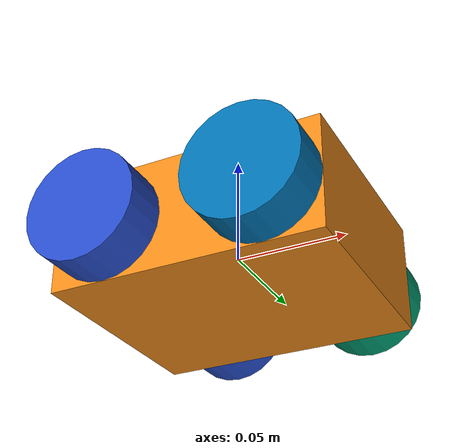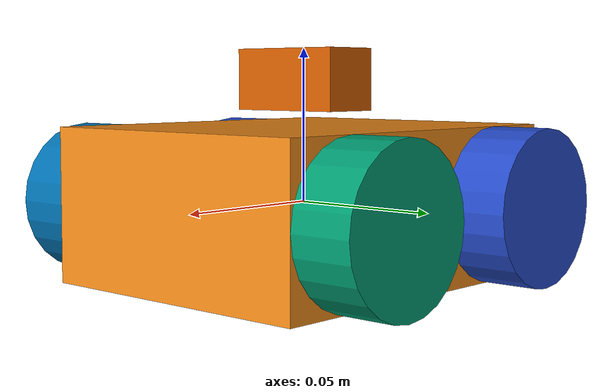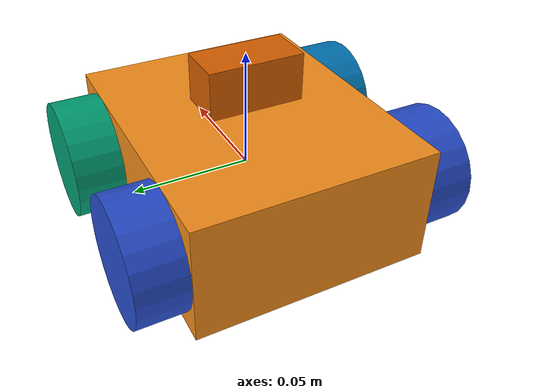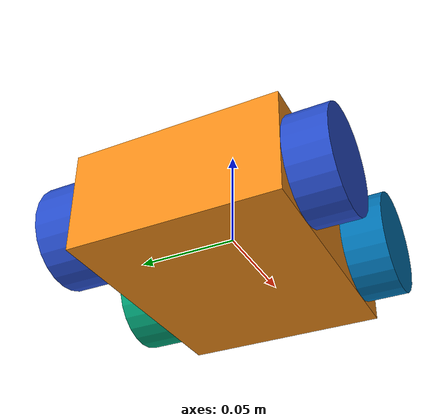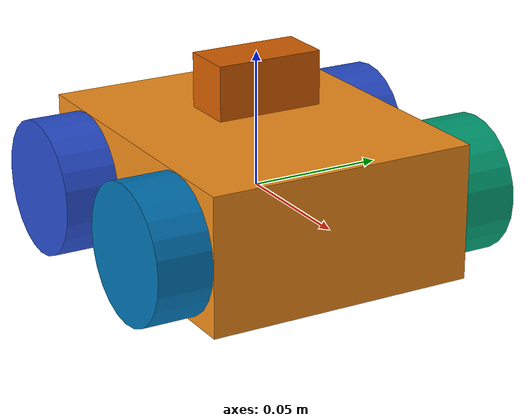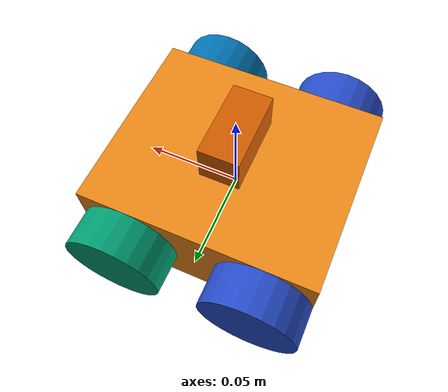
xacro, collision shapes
<?xml version='1.0'?>

<robot name="myrobot" xmlns:xacro="http://www.ros.org/wiki/xacro">

  <xacro:include filename="$(find mybot_description)/urdf/mybot.gazebo" />
  <xacro:include filename="$(find mybot_description)/urdf/materials.xacro" />
  <xacro:include filename="$(find mybot_description)/urdf/macros.xacro" />

  <link name='chassis'>
    <pose>0 0 0.1 0 0 0</pose>

    <inertial>
      <mass value="15.0"/>
      <origin xyz="0 0 0.03" rpy=" 0 0 0"/>
      <inertia
          ixx="0.1" ixy="0" ixz="0"
          iyy="0.1" iyz="0"
          izz="0.1"
      />
    </inertial>

    <collision name='collision'>
      <geometry>
        <box size=".12 .1 .05"/>
      </geometry>
    </collision>

    <visual name='chassis_visual'>
      <origin xyz="0 0 0.03" rpy=" 0 0 0"/>
      <geometry>
        <box size=".12 .1 .05"/>
      </geometry>
    </visual>

  </link>

  <link name="left_wheel">
    <!--origin xyz="0.1 0.13 0.1" rpy="0 1.5707 1.5707"/-->
    <collision name="collision">
      <origin xyz="0 0 0" rpy="0 1.5707 1.5707"/>
      <geometry>
        <cylinder radius="0.025" length="0.02"/>
      </geometry>
    </collision>
    <visual name="left_wheel_visual">
      <origin xyz="0 0 0" rpy="0 1.5707 1.5707"/>
      <geometry>
        <cylinder radius="0.025" length="0.02"/>
      </geometry>
    </visual>
    <inertial>
      <origin xyz="0 0 0" rpy="0 1.5707 1.5707"/>
      <mass value="5"/>
      <inertia
        ixx=".1" ixy="0.0" ixz="0.0"
        iyy=".1" iyz="0.0"
        izz=".1"/>
    </inertial>
  </link>

  <link name="left_wheel_1">
    <!--origin xyz="0.1 0.13 0.1" rpy="0 1.5707 1.5707"/-->
    <collision name="collision">
      <origin xyz="0 0 0" rpy="0 1.5707 1.5707"/>
      <geometry>
        <cylinder radius="0.025" length="0.02"/>
      </geometry>
    </collision>
    <visual name="left_wheel_visual">
      <origin xyz="0 0 0" rpy="0 1.5707 1.5707"/>
      <geometry>
        <cylinder radius="0.025" length="0.02"/>
      </geometry>
    </visual>
    <inertial>
      <origin xyz="0 0 0" rpy="0 1.5707 1.5707"/>
      <mass value="5"/>
      <inertia
        ixx=".1" ixy="0.0" ixz="0.0"
        iyy=".1" iyz="0.0"
        izz=".1"/>
    </inertial>
  </link>

  <link name="right_wheel">
    <!--origin xyz="0.1 -0.13 0.1" rpy="0 1.5707 1.5707"/-->
    <collision name="collision">
      <origin xyz="0 0 0" rpy="0 1.5707 1.5707"/>
      <geometry>
        <cylinder radius="0.025" length="0.02"/>
      </geometry>
    </collision>
    <visual name="right_wheel_visual">
      <origin xyz="0 0 0" rpy="0 1.5707 1.5707"/>
      <geometry>
        <cylinder radius="0.025" length="0.02"/>
      </geometry>
    </visual>
    <inertial>
      <origin xyz="0 0 0" rpy="0 1.5707 1.5707"/>
      <mass value="5"/>
      <inertia
        ixx=".1" ixy="0.0" ixz="0.0"
        iyy=".1" iyz="0.0"
        izz=".1"/>
    </inertial>
  </link>

  <link name="right_wheel_1">
    <!--origin xyz="0.1 -0.13 0.1" rpy="0 1.5707 1.5707"/-->
    <collision name="collision">
      <origin xyz="0 0 0" rpy="0 1.5707 1.5707"/>
      <geometry>
        <cylinder radius="0.025" length="0.02"/>
      </geometry>
    </collision>
    <visual name="right_wheel_visual">
      <origin xyz="0 0 0" rpy="0 1.5707 1.5707"/>
      <geometry>
        <cylinder radius="0.025" length="0.02"/>
      </geometry>
    </visual>
    <inertial>
      <origin xyz="0 0 0" rpy="0 1.5707 1.5707"/>
      <mass value="5"/>
      <inertia
        ixx=".1" ixy="0.0" ixz="0.0"
        iyy=".1" iyz="0.0"
        izz=".1"/>
    </inertial>
  </link>

  <joint type="continuous" name="left_wheel_hinge">
    <origin xyz="-0.035 0.06 0" rpy="0 0 0"/>
    <!--origin xyz="0.1 0.13 0" rpy="0 1.5707 1.5707"/-->
    <child link="left_wheel"/>
    <parent link="chassis"/>
    <axis xyz="0 1 0" rpy="0 0 0"/>
    <limit effort="10000" velocity="1000"/>
    <joint_properties damping="1.0" friction="1.0"/>
  </joint>

  <joint type="continuous" name="left_wheel_hinge_1">
    <origin xyz="0.035 0.06 0" rpy="0 0 0"/>
    <!--origin xyz="0.1 0.13 0" rpy="0 1.5707 1.5707"/-->
    <child link="left_wheel_1"/>
    <parent link="chassis"/>
    <axis xyz="0 1 0" rpy="0 0 0"/>
    <limit effort="10000" velocity="1000"/>
    <joint_properties damping="1.0" friction="1.0"/>
  </joint>

  <joint type="continuous" name="right_wheel_hinge">
    <origin xyz="-0.035 -0.06 0" rpy="0 0 0"/>
    <!--origin xyz="0.1 -0.13 0" rpy="0 1.5707 1.5707"/-->
    <child link="right_wheel"/>
    <parent link="chassis"/>
    <axis xyz="0 1 0" rpy="0 0 0"/>
    <limit effort="10000" velocity="1000"/>
    <joint_properties damping="1.0" friction="1.0"/>
  </joint>

 <joint type="continuous" name="right_wheel_hinge_1">
    <origin xyz="0.035 -0.06 0" rpy="0 0 0"/>
    <!--origin xyz="0.1 -0.13 0" rpy="0 1.5707 1.5707"/-->
    <child link="right_wheel_1"/>
    <parent link="chassis"/>
    <axis xyz="0 1 0" rpy="0 0 0"/>
    <limit effort="10000" velocity="1000"/>
    <joint_properties damping="1.0" friction="1.0"/>
  </joint>

<!-- Laser -->
  <joint name="hokuyo_joint" type="fixed">
    <axis xyz="0 1 0" />
    <origin xyz="0 0 .04" rpy="0 0 0"/>
    <parent link="chassis"/>
    <child link="hokuyo"/>
  </joint>

  <link name="hokuyo">
    <collision>
      <origin xyz="0 0 0" rpy="0 0 0"/>
      <geometry>
    <box size="0.02 0.04 0.02"/>                  <!-- size of ultrasonic not laser because this is collision-->
      </geometry>
    </collision>

    <visual>
      <origin xyz="0.035 0 0.04" rpy="0 0 0"/>    <!-- 5cm bltool x 2.5cm bl3rd x (0.04+0.03) lfoo2 -->
      <geometry>
        <mesh filename="package://mybot_description/meshes/hokuyo.dae"/>
      </geometry>
    </visual>

    <inertial>
      <mass value="1e-5" />
      <origin xyz="0 0 0" rpy="0 0 0"/>
      <inertia ixx="1e-6" ixy="0" ixz="0" iyy="1e-6" iyz="0" izz="1e-6" />
    </inertial>
  </link>
<!-- Laser -->

<!-- Laser1 -->
  <joint name="hokuyo_joint1" type="fixed">
    <axis xyz="0 1 0" />
    <origin xyz="0 0 .04" rpy="0 0 0"/>
    <parent link="chassis"/>
    <child link="hokuyo1"/>
  </joint>

  <link name="hokuyo1">
    <collision>
      <origin xyz="0 0 0" rpy="0 0 0"/>
      <geometry>
    <box size="0.02 0.04 0.02"/>                       <!-- size of ultrasonic not laser because this is collision-->
      </geometry>
    </collision>

    <visual>
      <origin xyz="0 0.025 0.04" rpy="0 0 1.5707"/>    <!-- 5cm bltool x 2.5cm bl3rd x (0.04+0.03) lfoo2 -->
      <geometry>
        <mesh filename="package://mybot_description/meshes/hokuyo.dae"/>
      </geometry>
    </visual>

    <inertial>
      <mass value="1e-5" />
      <origin xyz="0 0 0" rpy="0 0 0"/>
      <inertia ixx="1e-6" ixy="0" ixz="0" iyy="1e-6" iyz="0" izz="1e-6" />
    </inertial>
  </link>
<!-- Laser1 -->

<!-- Laser2 -->
  <joint name="hokuyo_joint2" type="fixed">
    <axis xyz="0 1 0" />
    <origin xyz="0 0 .04" rpy="0 0 0"/>
    <parent link="chassis"/>
    <child link="hokuyo2"/>
  </joint>

  <link name="hokuyo2">
    <collision>
      <origin xyz="0 0 0" rpy="0 0 0"/>
      <geometry>
    <box size="0.02 0.04 0.02"/>                       <!-- size of ultrasonic not laser because this is collision-->
      </geometry>
    </collision>

    <visual>
      <origin xyz="0 -0.025 0.04" rpy="0 0 -1.5707"/>    <!-- 5cm bltool x 2.5cm bl3rd x (0.04+0.03) lfoo2 -->
      <geometry>
        <mesh filename="package://mybot_description/meshes/hokuyo.dae"/>
      </geometry>
    </visual>

    <inertial>
      <mass value="1e-5" />
      <origin xyz="0 0 0" rpy="0 0 0"/>
      <inertia ixx="1e-6" ixy="0" ixz="0" iyy="1e-6" iyz="0" izz="1e-6" />
    </inertial>
  </link>
<!-- Laser2 -->

</robot>
